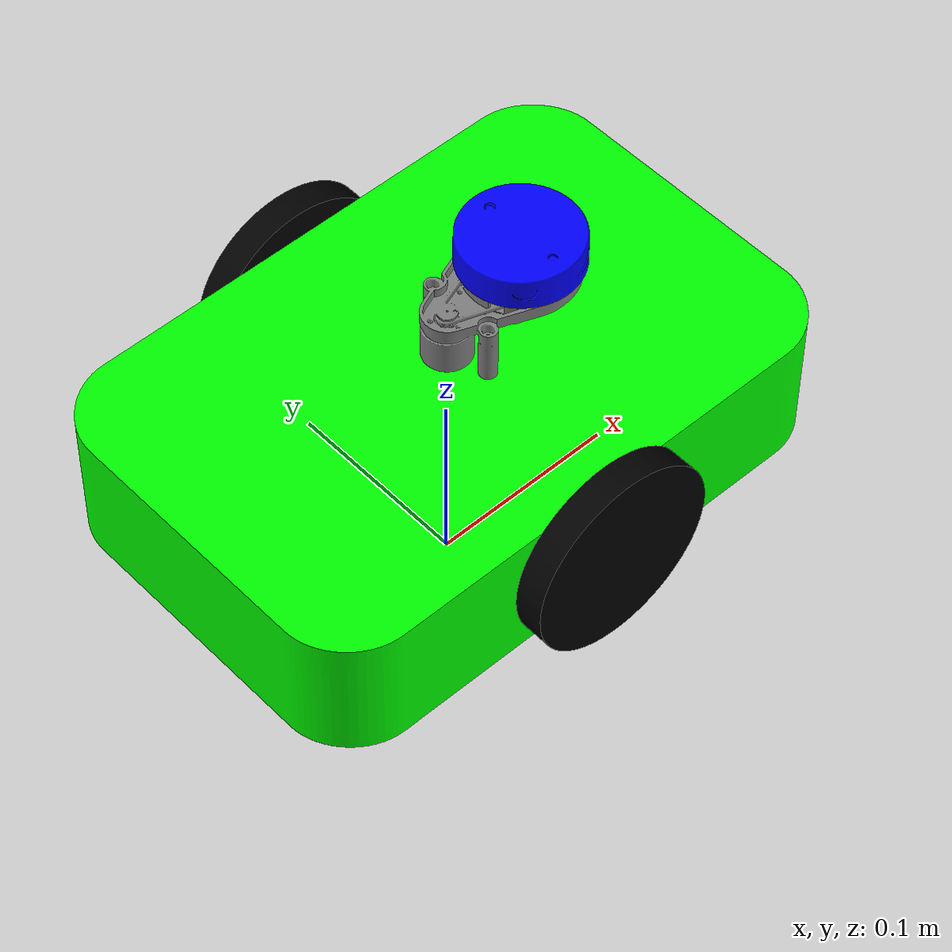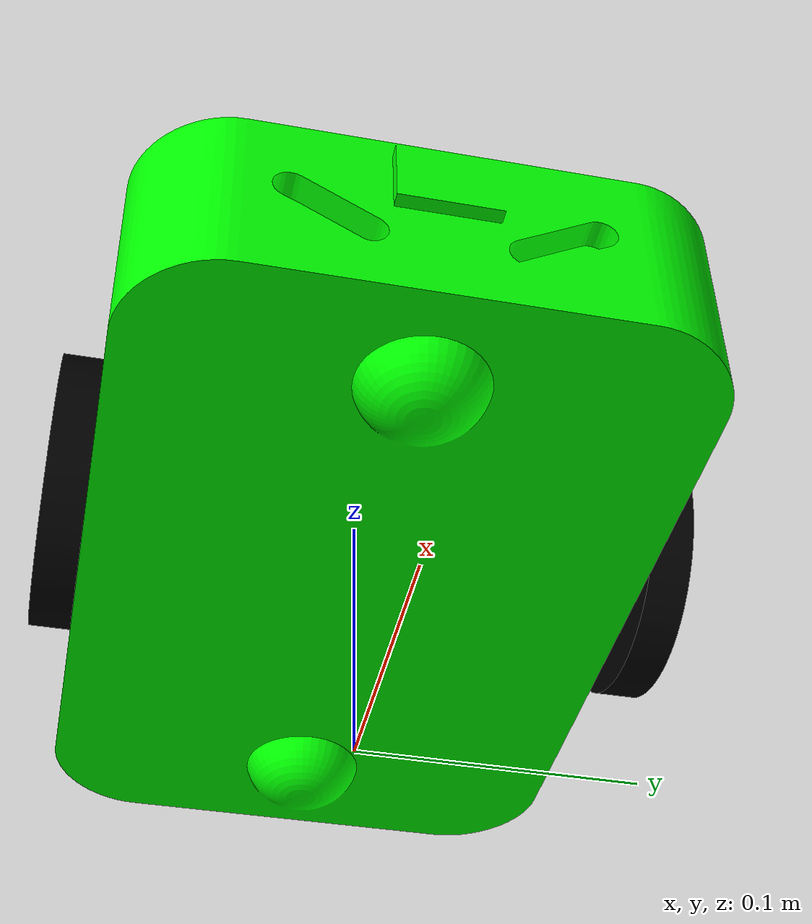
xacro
<?xml version="1.0" ?>
<robot name="agvrobot" xmlns:xacro="http://www.ros.org/wiki/xacro">

  <xacro:include filename="ros2_control.xacro"/>

  <!-- Define materials -->
  <material name="Green">
    <color rgba="0.0 1.0 0.0 1.0"/>
  </material>

  <material name="Black">
    <color rgba="0.0 0.0 0.0 1.0"/>
  </material>

  <material name="Grey">
    <color rgba="0.5 0.5 0.5 1.0"/>
  </material>

  <material name="Blue">
    <color rgba="0.0 0.0 1.0 1.0"/>
  </material>

  <link name="base_footprint" />

  <!-- Base link -->
  <link name="base_link">
    <inertial>
      <origin xyz="-0.000163 0 0.049721" rpy="0 0 0"/>
      <mass value="32.553"/>
      <inertia ixx="0.118177" iyy="0.2506" izz="0.341546" ixy="0.0" iyz="0.0" ixz="-0.000103"/>
    </inertial>
    <visual>
      <origin xyz="0 0 0" rpy="0 0 0"/>
      <geometry>
        <mesh filename="file://$(find agvrobot_description)/meshes/base_link.stl" scale="0.001 0.001 0.001"/>
      </geometry>
      <material name="Green"/>
    </visual>
    <collision>
      <origin xyz="0 0 0" rpy="0 0 0"/>
      <geometry>
        <mesh filename="file://$(find agvrobot_description)/meshes/base_link.stl" scale="0.001 0.001 0.001"/>
      </geometry>
    </collision>
  </link>

<gazebo reference="base_link">
    <material>Gazebo/Green</material>
  <mu1>0.1</mu1>
  <mu2>0.1</mu2>
  <self_collide>true</self_collide>
  <gravity>true</gravity>
  </gazebo>

  <!-- Lidar top link -->
  <link name="lidar_top_1">
    <inertial>
      <origin xyz="0 0 0.023" rpy="0 0 0"/>
      <mass value="0.341"/>
      <inertia ixx="0.000081" iyy="0.000081" izz="0.000147" ixy="0.0" iyz="0.0" ixz="0.0"/>
    </inertial>
    <visual>
      <origin xyz="-0.0442 0.000404 -0.104" rpy="0 0 0"/>
      <geometry>
        <mesh filename="file://$(find agvrobot_description)/meshes/lidar_top_1.stl" scale="0.001 0.001 0.001"/>
      </geometry>
      <material name="Blue"/>
    </visual>
    <collision>
      <origin xyz="-0.0442 0.000404 -0.104" rpy="0 0 0"/>
      <geometry>
        <mesh filename="file://$(find agvrobot_description)/meshes/lidar_top_1.stl" scale="0.001 0.001 0.001"/>
      </geometry>
    </collision>
  </link>
<gazebo reference="lidar_top_1">
    <material>Gazebo/Blue</material>
  <mu1>0.2</mu1>
  <mu2>0.2</mu2>
  <self_collide>true</self_collide>
  </gazebo>
  <!-- Lidar bottom link -->
  <link name="lidar_bottom_1">
    <inertial>
      <origin xyz="0.025944 -0.000088 0.01492" rpy="0 0 0"/>
      <mass value="0.032842"/>
      <inertia ixx="0.00001" iyy="0.000025" izz="0.000029" ixy="0.0" iyz="0.0" ixz="-0.000002"/>
    </inertial>
    <visual>
      <origin xyz="0 0 -0.085" rpy="0 0 0"/>
      <geometry>
        <mesh filename="file://$(find agvrobot_description)/meshes/lidar_bottom_1.stl" scale="0.001 0.001 0.001"/>
      </geometry>
      <material name="Grey"/>
    </visual>
    <collision>
      <origin xyz="0 0 -0.085" rpy="0 0 0"/>
      <geometry>
        <mesh filename="file://$(find agvrobot_description)/meshes/lidar_bottom_1.stl" scale="0.001 0.001 0.001"/>
      </geometry>
    </collision>
  </link>

<gazebo reference="lidar_bottom_1">
    <material>Gazebo/Grey</material>
  <mu1>0.2</mu1>
  <mu2>0.2</mu2>
  <self_collide>true</self_collide>
  </gazebo>

  <!-- Right wheel link -->
  <link name="right_wheel_1">
    <inertial>
      <origin xyz="0 -0.0075 0" rpy="0 0 0"/>
      <mass value="0.924806"/>
      <inertia ixx="0.000595" iyy="0.001156" izz="0.000595" ixy="0.0" iyz="0.0" ixz="0.0"/>
    </inertial>
    <visual>
      <origin xyz="0 0.1 -0.05" rpy="0 0 0"/>
      <geometry>
        <mesh filename="file://$(find agvrobot_description)/meshes/right_wheel_1.stl" scale="0.001 0.001 0.001"/>
      </geometry>
      <material name="Black"/>
    </visual>
    <collision>
      <origin xyz="0 0.1 -0.05" rpy="0 0 0"/>
      <geometry>
        <mesh filename="file://$(find agvrobot_description)/meshes/right_wheel_1.stl" scale="0.001 0.001 0.001"/>
      </geometry>
    </collision>
  </link>
  <gazebo reference="right_wheel_1">
    <material>Gazebo/Black </material>
  <mu1>1</mu1>
  <mu2>1</mu2>
  <self_collide>true</self_collide>
  </gazebo>
  <!-- Left wheel link -->
  <link name="left_wheel_1">
    <inertial>
      <origin xyz="0 0.0075 0" rpy="0 0 0"/>
      <mass value="0.924806"/>
      <inertia ixx="0.000595" iyy="0.001156" izz="0.000595" ixy="0.0" iyz="0.0" ixz="0.0"/>
    </inertial>
    <visual>
      <origin xyz="0 -0.1 -0.05" rpy="0 0 0"/>
      <geometry>
        <mesh filename="file://$(find agvrobot_description)/meshes/left_wheel_1.stl" scale="0.001 0.001 0.001"/>
      </geometry>
      <material name="Black"/>
    </visual>
    <collision>
      <origin xyz="0 -0.1 -0.05" rpy="0 0 0"/>
      <geometry>
        <mesh filename="file://$(find agvrobot_description)/meshes/left_wheel_1.stl" scale="0.001 0.001 0.001"/>
      </geometry>
    </collision>
  </link>
<gazebo reference="left_wheel_1">
    <material>Gazebo/Black </material>
  <mu1>1</mu1>
  <mu2>1</mu2>
  <self_collide>true</self_collide>
  </gazebo>
  <!-- Joints -->
  <joint name="base_joint" type="fixed">
    <parent link="base_footprint" />
    <child link="base_link" />
    <origin xyz="0 0 0.05" rpy="0 0 0"/>
  </joint>

  <joint name="lidar_joint" type="fixed">
    <origin xyz="0.0442 -0.000404 0.019" rpy="0 0 0"/>
    <parent link="lidar_bottom_1"/>
    <child link="lidar_top_1"/>
  </joint>

  <joint name="rigid_5" type="fixed">
    <origin xyz="0.0 0.0 0.085" rpy="0 0 0"/>
    <parent link="base_link"/>
    <child link="lidar_bottom_1"/>
  </joint>

  <joint name="right_joint" type="continuous">
    <origin xyz="0.0 -0.1 0.05" rpy="0 0 0"/>
    <parent link="base_link"/>
    <child link="right_wheel_1"/>
    <axis xyz="0.0 1.0 0.0"/>
  </joint>

  <joint name="left_joint" type="continuous">
    <origin xyz="0.0 0.1 0.05" rpy="0 0 0"/>
    <parent link="base_link"/>
    <child link="left_wheel_1"/>
    <axis xyz="0.0 1.0 0.0"/>
  </joint>

<gazebo>
	        <plugin name="diff_drive" filename="libgazebo_ros_diff_drive.so">

    <updateRate>100</updateRate>
              <left_joint>left_joint</left_joint>
              <right_joint>right_joint</right_joint>

	            <wheel_separation>0.1</wheel_separation>

	            <wheel_diameter>0.05</wheel_diameter>

	            <max_wheel_torque>80</max_wheel_torque>

	            <max_wheel_acceleration>1.0</max_wheel_acceleration>

               <command_topic>cmd_vel</command_topic>

              <odometry_topic>odom</odometry_topic>

	            <odometry_frame>odom</odometry_frame>

	            <robot_base_frame>base_link</robot_base_frame>

	            <publish_odom>true</publish_odom>

	            <publish_odom_tf>true</publish_odom_tf>

	            <publish_wheel_tf>true</publish_wheel_tf>

	        </plugin>

	     </gazebo>

<gazebo reference="lidar_top_1">

        <sensor name="laser" type="ray">
            <pose> 0 0 0 0 0 0 </pose>
            <visualize>true</visualize>
            <update_rate>30</update_rate>
            <ray>
                <scan>
                    <horizontal>
                        <samples>360</samples>
                        <min_angle>-3.14</min_angle>
                        <max_angle>3.14</max_angle>
                    </horizontal>
                </scan>
                <range>
                    <min>0.3</min>
                    <max>12</max>
                </range>
            </ray>
            <plugin name="laser_controller" filename="libgazebo_ros_ray_sensor.so">
                <output_type>sensor_msgs/LaserScan</output_type>
                <frame_name>lidar_top_1</frame_name>
            </plugin>
        </sensor>
    </gazebo>

</robot>
